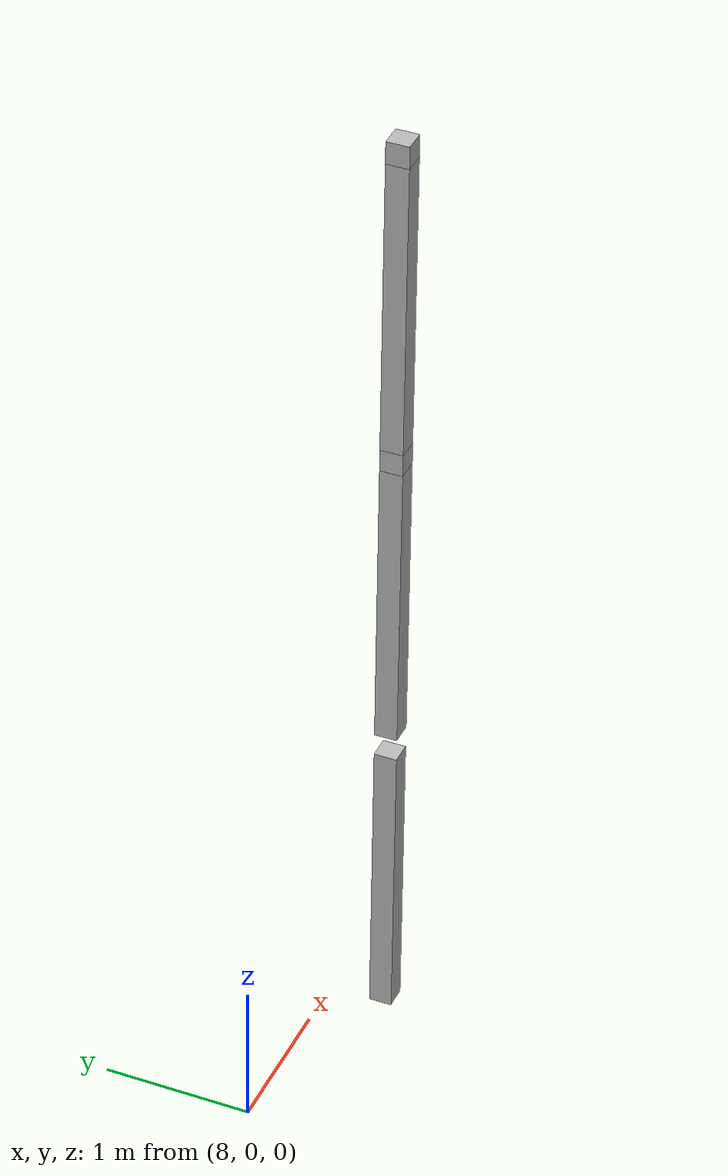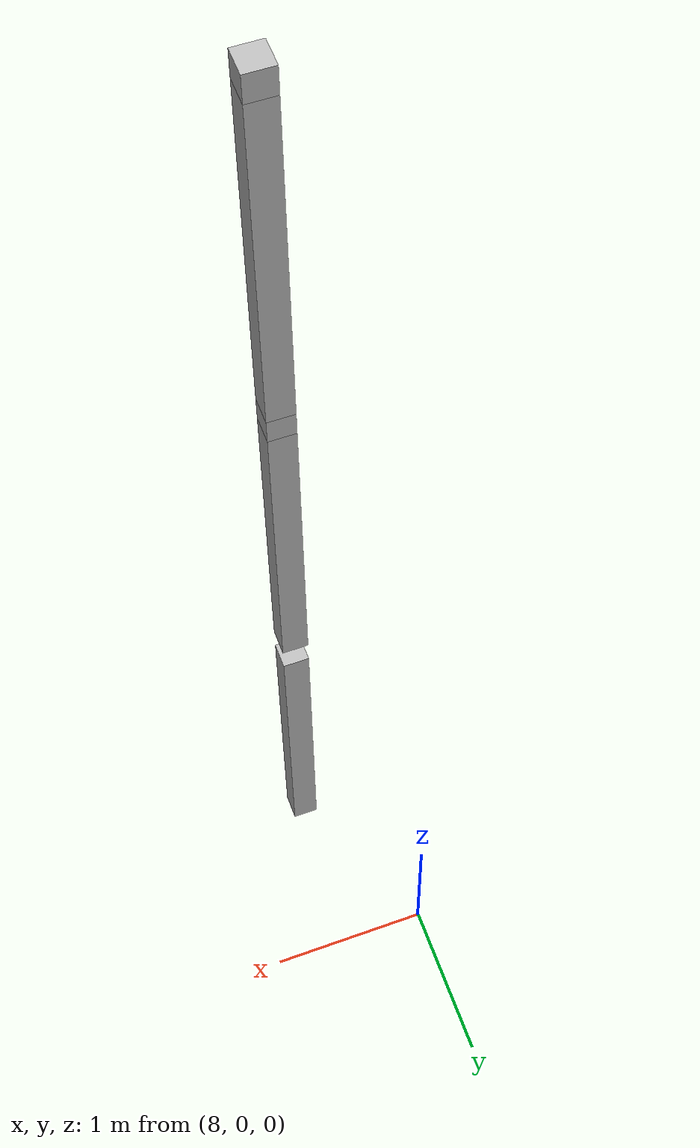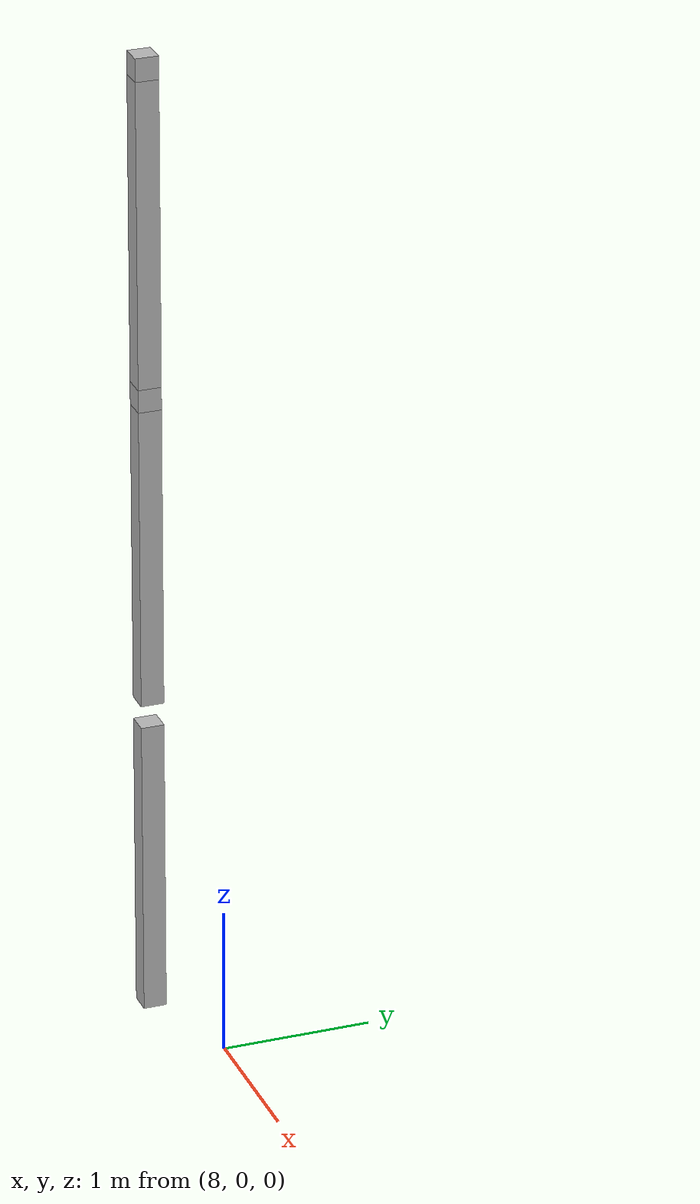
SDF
<sdf version="1.7">
 <world name="default">
  <model name="orthogonal_747_2.000.15_TS">
   <static>1</static>
   <link name="z_link_2_2_7">
    <inertial>
     <mass>1</mass>
     <inertia>
      <ixx>0.166667</ixx>
      <ixy>0</ixy>
      <ixz>0</ixz>
      <iyy>0.166667</iyy>
      <iyz>0</iyz>
      <izz>0.166667</izz>
     </inertia>
    </inertial>
    <pose>15.05 4.3 4.3 0 -0 0</pose>
    <visual name="visual_0">
     <laser_retro>2213</laser_retro>
     <geometry><box><size>0.15 1e-06 2</size></box></geometry>
     <material>
      <script><name>Gazebo/Grey</name><uri>file://media/materials/scripts/gazebo.material</uri></script>
      <shader type="pixel"><normal_map>__default__</normal_map></shader>
      <ambient>0.678 0.498 0.659 1</ambient>
      <diffuse>0.7 0.7 0.7 1</diffuse>
      <specular>0.01 0.01 0.01 1</specular>
      <emissive>0 0 0 1</emissive>
     </material>
     <pose>0 -0.075 0 0 -0 0</pose>
     <transparency>1</transparency>
    </visual>
    <visual name="visual_1">
     <laser_retro>2214</laser_retro>
     <geometry><box><size>0.15 1e-06 2</size></box></geometry>
     <material>
      <script><name>Gazebo/Grey</name><uri>file://media/materials/scripts/gazebo.material</uri></script>
      <shader type="pixel"><normal_map>__default__</normal_map></shader>
      <ambient>0.447 0.624 0.812 1</ambient>
      <diffuse>0.7 0.7 0.7 1</diffuse>
      <specular>0.01 0.01 0.01 1</specular>
      <emissive>0 0 0 1</emissive>
     </material>
     <pose>0 0.075 0 0 -0 0</pose>
     <transparency>1</transparency>
    </visual>
    <visual name="visual_2">
     <laser_retro>2215</laser_retro>
     <geometry><box><size>0.15 0.15 1e-06</size></box></geometry>
     <material>
      <script><name>Gazebo/Grey</name><uri>file://media/materials/scripts/gazebo.material</uri></script>
      <shader type="pixel"><normal_map>__default__</normal_map></shader>
      <ambient>0.988 0.686 0.243 1</ambient>
      <diffuse>0.7 0.7 0.7 1</diffuse>
      <specular>0.01 0.01 0.01 1</specular>
      <emissive>0 0 0 1</emissive>
     </material>
     <pose>0 0 -1 0 -0 0</pose>
     <transparency>1</transparency>
    </visual>
    <visual name="visual_3">
     <laser_retro>2216</laser_retro>
     <geometry><box><size>1e-06 0.15 2</size></box></geometry>
     <material>
      <script><name>Gazebo/Grey</name><uri>file://media/materials/scripts/gazebo.material</uri></script>
      <shader type="pixel"><normal_map>__default__</normal_map></shader>
      <ambient>0.988 0.914 0.31 1</ambient>
      <diffuse>0.7 0.7 0.7 1</diffuse>
      <specular>0.01 0.01 0.01 1</specular>
      <emissive>0 0 0 1</emissive>
     </material>
     <pose>0.075 0 0 0 -0 0</pose>
     <transparency>1</transparency>
    </visual>
    <visual name="visual_4">
     <laser_retro>2217</laser_retro>
     <geometry><box><size>0.15 0.15 1e-06</size></box></geometry>
     <material>
      <script><name>Gazebo/Grey</name><uri>file://media/materials/scripts/gazebo.material</uri></script>
      <shader type="pixel"><normal_map>__default__</normal_map></shader>
      <ambient>0.937 0.161 0.161 1</ambient>
      <diffuse>0.7 0.7 0.7 1</diffuse>
      <specular>0.01 0.01 0.01 1</specular>
      <emissive>0 0 0 1</emissive>
     </material>
     <pose>0 0 1 0 -0 0</pose>
     <transparency>1</transparency>
    </visual>
    <visual name="visual_5">
     <laser_retro>2218</laser_retro>
     <geometry><box><size>1e-06 0.15 2</size></box></geometry>
     <material>
      <script><name>Gazebo/Grey</name><uri>file://media/materials/scripts/gazebo.material</uri></script>
      <shader type="pixel"><normal_map>__default__</normal_map></shader>
      <ambient>0.541 0.886 0.204 1</ambient>
      <diffuse>0.7 0.7 0.7 1</diffuse>
      <specular>0.01 0.01 0.01 1</specular>
      <emissive>0 0 0 1</emissive>
     </material>
     <pose>-0.075 0 0 0 -0 0</pose>
     <transparency>1</transparency>
    </visual>
    <visual name="visual_texture">
     <geometry><box><size>0.149985 0.149985 1.9998</size></box></geometry>
     <material>
      <script>
       <uri>model://BASE_MODELS/simple_block_v2_textured/materials/scripts</uri>
       <uri>model://BASE_MODELS/simple_block_v2_textured/materials/textures</uri>
       <name>metal</name>
      </script>
     </material>
     <laser_retro>2219</laser_retro>
    </visual>
    <collision name="collision">
     <geometry><box><size>0.15 0.15 2</size></box></geometry>
     <surface>
      <friction>
       <ode><mu>1</mu><mu2>1</mu2><fdir1>0 0 0</fdir1><slip1>0</slip1><slip2>0</slip2></ode>
       <torsional>
        <coefficient>1</coefficient>
        <patch_radius>0</patch_radius>
        <surface_radius>0</surface_radius>
        <use_patch_radius>1</use_patch_radius>
        <ode><slip>0</slip></ode>
       </torsional>
      </friction>
      <bounce><restitution_coefficient>0</restitution_coefficient><threshold>1e+06</threshold></bounce>
      <contact>
       <collide_without_contact>0</collide_without_contact>
       <collide_without_contact_bitmask>1</collide_without_contact_bitmask>
       <collide_bitmask>1</collide_bitmask>
       <ode>
        <soft_cfm>0</soft_cfm>
        <soft_erp>0.2</soft_erp>
        <kp>1e+13</kp>
        <kd>1</kd>
        <max_vel>0.01</max_vel>
        <min_depth>0</min_depth>
       </ode>
       <bullet>
        <split_impulse>1</split_impulse>
        <split_impulse_penetration_threshold>-0.01</split_impulse_penetration_threshold>
        <soft_cfm>0</soft_cfm>
        <soft_erp>0.2</soft_erp>
        <kp>1e+13</kp>
        <kd>1</kd>
       </bullet>
      </contact>
     </surface>
    </collision>
   </link>
   <link name="u_link_3_2_7">
    <inertial>
     <mass>1</mass>
     <inertia>
      <ixx>0.166667</ixx>
      <ixy>0</ixy>
      <ixz>0</ixz>
      <iyy>0.166667</iyy>
      <iyz>0</iyz>
      <izz>0.166667</izz>
     </inertia>
    </inertial>
    <pose>15.05 4.3 7.525 0 -0 0</pose>
    <visual name="visual_0">
     <laser_retro>3109</laser_retro>
     <geometry><box><size>0.15 1e-06 0.15</size></box></geometry>
     <material>
      <script><name>Gazebo/Grey</name><uri>file://media/materials/scripts/gazebo.material</uri></script>
      <shader type="pixel"><normal_map>__default__</normal_map></shader>
      <ambient>0.678 0.498 0.659 1</ambient>
      <diffuse>0.7 0.7 0.7 1</diffuse>
      <specular>0.01 0.01 0.01 1</specular>
      <emissive>0 0 0 1</emissive>
     </material>
     <pose>0 -0.075 0 0 -0 0</pose>
     <transparency>1</transparency>
    </visual>
    <visual name="visual_1">
     <laser_retro>3110</laser_retro>
     <geometry><box><size>0.15 1e-06 0.15</size></box></geometry>
     <material>
      <script><name>Gazebo/Grey</name><uri>file://media/materials/scripts/gazebo.material</uri></script>
      <shader type="pixel"><normal_map>__default__</normal_map></shader>
      <ambient>0.447 0.624 0.812 1</ambient>
      <diffuse>0.7 0.7 0.7 1</diffuse>
      <specular>0.01 0.01 0.01 1</specular>
      <emissive>0 0 0 1</emissive>
     </material>
     <pose>0 0.075 0 0 -0 0</pose>
     <transparency>1</transparency>
    </visual>
    <visual name="visual_2">
     <laser_retro>3111</laser_retro>
     <geometry><box><size>0.15 0.15 1e-06</size></box></geometry>
     <material>
      <script><name>Gazebo/Grey</name><uri>file://media/materials/scripts/gazebo.material</uri></script>
      <shader type="pixel"><normal_map>__default__</normal_map></shader>
      <ambient>0.988 0.686 0.243 1</ambient>
      <diffuse>0.7 0.7 0.7 1</diffuse>
      <specular>0.01 0.01 0.01 1</specular>
      <emissive>0 0 0 1</emissive>
     </material>
     <pose>0 0 -0.075 0 -0 0</pose>
     <transparency>1</transparency>
    </visual>
    <visual name="visual_3">
     <laser_retro>3112</laser_retro>
     <geometry><box><size>1e-06 0.15 0.15</size></box></geometry>
     <material>
      <script><name>Gazebo/Grey</name><uri>file://media/materials/scripts/gazebo.material</uri></script>
      <shader type="pixel"><normal_map>__default__</normal_map></shader>
      <ambient>0.988 0.914 0.31 1</ambient>
      <diffuse>0.7 0.7 0.7 1</diffuse>
      <specular>0.01 0.01 0.01 1</specular>
      <emissive>0 0 0 1</emissive>
     </material>
     <pose>0.075 0 0 0 -0 0</pose>
     <transparency>1</transparency>
    </visual>
    <visual name="visual_4">
     <laser_retro>3113</laser_retro>
     <geometry><box><size>0.15 0.15 1e-06</size></box></geometry>
     <material>
      <script><name>Gazebo/Grey</name><uri>file://media/materials/scripts/gazebo.material</uri></script>
      <shader type="pixel"><normal_map>__default__</normal_map></shader>
      <ambient>0.937 0.161 0.161 1</ambient>
      <diffuse>0.7 0.7 0.7 1</diffuse>
      <specular>0.01 0.01 0.01 1</specular>
      <emissive>0 0 0 1</emissive>
     </material>
     <pose>0 0 0.075 0 -0 0</pose>
     <transparency>1</transparency>
    </visual>
    <visual name="visual_5">
     <laser_retro>3114</laser_retro>
     <geometry><box><size>1e-06 0.15 0.15</size></box></geometry>
     <material>
      <script><name>Gazebo/Grey</name><uri>file://media/materials/scripts/gazebo.material</uri></script>
      <shader type="pixel"><normal_map>__default__</normal_map></shader>
      <ambient>0.541 0.886 0.204 1</ambient>
      <diffuse>0.7 0.7 0.7 1</diffuse>
      <specular>0.01 0.01 0.01 1</specular>
      <emissive>0 0 0 1</emissive>
     </material>
     <pose>-0.075 0 0 0 -0 0</pose>
     <transparency>1</transparency>
    </visual>
    <visual name="visual_texture">
     <geometry><box><size>0.149985 0.149985 0.149985</size></box></geometry>
     <material>
      <script>
       <uri>model://BASE_MODELS/simple_block_v2_textured/materials/scripts</uri>
       <uri>model://BASE_MODELS/simple_block_v2_textured/materials/textures</uri>
       <name>metal</name>
      </script>
     </material>
     <laser_retro>3115</laser_retro>
    </visual>
    <collision name="collision">
     <geometry><box><size>0.15 0.15 0.15</size></box></geometry>
     <surface>
      <friction>
       <ode><mu>1</mu><mu2>1</mu2><fdir1>0 0 0</fdir1><slip1>0</slip1><slip2>0</slip2></ode>
       <torsional>
        <coefficient>1</coefficient>
        <patch_radius>0</patch_radius>
        <surface_radius>0</surface_radius>
        <use_patch_radius>1</use_patch_radius>
        <ode><slip>0</slip></ode>
       </torsional>
      </friction>
      <bounce><restitution_coefficient>0</restitution_coefficient><threshold>1e+06</threshold></bounce>
      <contact>
       <collide_without_contact>0</collide_without_contact>
       <collide_without_contact_bitmask>1</collide_without_contact_bitmask>
       <collide_bitmask>1</collide_bitmask>
       <ode>
        <soft_cfm>0</soft_cfm>
        <soft_erp>0.2</soft_erp>
        <kp>1e+13</kp>
        <kd>1</kd>
        <max_vel>0.01</max_vel>
        <min_depth>0</min_depth>
       </ode>
       <bullet>
        <split_impulse>1</split_impulse>
        <split_impulse_penetration_threshold>-0.01</split_impulse_penetration_threshold>
        <soft_cfm>0</soft_cfm>
        <soft_erp>0.2</soft_erp>
        <kp>1e+13</kp>
        <kd>1</kd>
       </bullet>
      </contact>
     </surface>
    </collision>
   </link>
   <link name="z_link_3_2_7">
    <inertial>
     <mass>1</mass>
     <inertia>
      <ixx>0.166667</ixx>
      <ixy>0</ixy>
      <ixz>0</ixz>
      <iyy>0.166667</iyy>
      <iyz>0</iyz>
      <izz>0.166667</izz>
     </inertia>
    </inertial>
    <pose>15.05 4.3 6.45 0 -0 0</pose>
    <visual name="visual_0">
     <laser_retro>3116</laser_retro>
     <geometry><box><size>0.15 1e-06 2</size></box></geometry>
     <material>
      <script><name>Gazebo/Grey</name><uri>file://media/materials/scripts/gazebo.material</uri></script>
      <shader type="pixel"><normal_map>__default__</normal_map></shader>
      <ambient>0.678 0.498 0.659 1</ambient>
      <diffuse>0.7 0.7 0.7 1</diffuse>
      <specular>0.01 0.01 0.01 1</specular>
      <emissive>0 0 0 1</emissive>
     </material>
     <pose>0 -0.075 0 0 -0 0</pose>
     <transparency>1</transparency>
    </visual>
    <visual name="visual_1">
     <laser_retro>3117</laser_retro>
     <geometry><box><size>0.15 1e-06 2</size></box></geometry>
     <material>
      <script><name>Gazebo/Grey</name><uri>file://media/materials/scripts/gazebo.material</uri></script>
      <shader type="pixel"><normal_map>__default__</normal_map></shader>
      <ambient>0.447 0.624 0.812 1</ambient>
      <diffuse>0.7 0.7 0.7 1</diffuse>
      <specular>0.01 0.01 0.01 1</specular>
      <emissive>0 0 0 1</emissive>
     </material>
     <pose>0 0.075 0 0 -0 0</pose>
     <transparency>1</transparency>
    </visual>
    <visual name="visual_2">
     <laser_retro>3118</laser_retro>
     <geometry><box><size>0.15 0.15 1e-06</size></box></geometry>
     <material>
      <script><name>Gazebo/Grey</name><uri>file://media/materials/scripts/gazebo.material</uri></script>
      <shader type="pixel"><normal_map>__default__</normal_map></shader>
      <ambient>0.988 0.686 0.243 1</ambient>
      <diffuse>0.7 0.7 0.7 1</diffuse>
      <specular>0.01 0.01 0.01 1</specular>
      <emissive>0 0 0 1</emissive>
     </material>
     <pose>0 0 -1 0 -0 0</pose>
     <transparency>1</transparency>
    </visual>
    <visual name="visual_3">
     <laser_retro>3119</laser_retro>
     <geometry><box><size>1e-06 0.15 2</size></box></geometry>
     <material>
      <script><name>Gazebo/Grey</name><uri>file://media/materials/scripts/gazebo.material</uri></script>
      <shader type="pixel"><normal_map>__default__</normal_map></shader>
      <ambient>0.988 0.914 0.31 1</ambient>
      <diffuse>0.7 0.7 0.7 1</diffuse>
      <specular>0.01 0.01 0.01 1</specular>
      <emissive>0 0 0 1</emissive>
     </material>
     <pose>0.075 0 0 0 -0 0</pose>
     <transparency>1</transparency>
    </visual>
    <visual name="visual_4">
     <laser_retro>3120</laser_retro>
     <geometry><box><size>0.15 0.15 1e-06</size></box></geometry>
     <material>
      <script><name>Gazebo/Grey</name><uri>file://media/materials/scripts/gazebo.material</uri></script>
      <shader type="pixel"><normal_map>__default__</normal_map></shader>
      <ambient>0.937 0.161 0.161 1</ambient>
      <diffuse>0.7 0.7 0.7 1</diffuse>
      <specular>0.01 0.01 0.01 1</specular>
      <emissive>0 0 0 1</emissive>
     </material>
     <pose>0 0 1 0 -0 0</pose>
     <transparency>1</transparency>
    </visual>
    <visual name="visual_5">
     <laser_retro>3121</laser_retro>
     <geometry><box><size>1e-06 0.15 2</size></box></geometry>
     <material>
      <script><name>Gazebo/Grey</name><uri>file://media/materials/scripts/gazebo.material</uri></script>
      <shader type="pixel"><normal_map>__default__</normal_map></shader>
      <ambient>0.541 0.886 0.204 1</ambient>
      <diffuse>0.7 0.7 0.7 1</diffuse>
      <specular>0.01 0.01 0.01 1</specular>
      <emissive>0 0 0 1</emissive>
     </material>
     <pose>-0.075 0 0 0 -0 0</pose>
     <transparency>1</transparency>
    </visual>
    <visual name="visual_texture">
     <geometry><box><size>0.149985 0.149985 1.9998</size></box></geometry>
     <material>
      <script>
       <uri>model://BASE_MODELS/simple_block_v2_textured/materials/scripts</uri>
       <uri>model://BASE_MODELS/simple_block_v2_textured/materials/textures</uri>
       <name>metal</name>
      </script>
     </material>
     <laser_retro>3122</laser_retro>
    </visual>
    <collision name="collision">
     <geometry><box><size>0.15 0.15 2</size></box></geometry>
     <surface>
      <friction>
       <ode><mu>1</mu><mu2>1</mu2><fdir1>0 0 0</fdir1><slip1>0</slip1><slip2>0</slip2></ode>
       <torsional>
        <coefficient>1</coefficient>
        <patch_radius>0</patch_radius>
        <surface_radius>0</surface_radius>
        <use_patch_radius>1</use_patch_radius>
        <ode><slip>0</slip></ode>
       </torsional>
      </friction>
      <bounce><restitution_coefficient>0</restitution_coefficient><threshold>1e+06</threshold></bounce>
      <contact>
       <collide_without_contact>0</collide_without_contact>
       <collide_without_contact_bitmask>1</collide_without_contact_bitmask>
       <collide_bitmask>1</collide_bitmask>
       <ode>
        <soft_cfm>0</soft_cfm>
        <soft_erp>0.2</soft_erp>
        <kp>1e+13</kp>
        <kd>1</kd>
        <max_vel>0.01</max_vel>
        <min_depth>0</min_depth>
       </ode>
       <bullet>
        <split_impulse>1</split_impulse>
        <split_impulse_penetration_threshold>-0.01</split_impulse_penetration_threshold>
        <soft_cfm>0</soft_cfm>
        <soft_erp>0.2</soft_erp>
        <kp>1e+13</kp>
        <kd>1</kd>
       </bullet>
      </contact>
     </surface>
    </collision>
   </link>
   <link name="u_link_4_2_7">
    <inertial>
     <mass>1</mass>
     <inertia>
      <ixx>0.166667</ixx>
      <ixy>0</ixy>
      <ixz>0</ixz>
      <iyy>0.166667</iyy>
      <iyz>0</iyz>
      <izz>0.166667</izz>
     </inertia>
    </inertial>
    <pose>15.05 4.3 9.675 0 -0 0</pose>
    <visual name="visual_0">
     <laser_retro>4012</laser_retro>
     <geometry><box><size>0.15 1e-06 0.15</size></box></geometry>
     <material>
      <script><name>Gazebo/Grey</name><uri>file://media/materials/scripts/gazebo.material</uri></script>
      <shader type="pixel"><normal_map>__default__</normal_map></shader>
      <ambient>0.678 0.498 0.659 1</ambient>
      <diffuse>0.7 0.7 0.7 1</diffuse>
      <specular>0.01 0.01 0.01 1</specular>
      <emissive>0 0 0 1</emissive>
     </material>
     <pose>0 -0.075 0 0 -0 0</pose>
     <transparency>1</transparency>
    </visual>
    <visual name="visual_1">
     <laser_retro>4013</laser_retro>
     <geometry><box><size>0.15 1e-06 0.15</size></box></geometry>
     <material>
      <script><name>Gazebo/Grey</name><uri>file://media/materials/scripts/gazebo.material</uri></script>
      <shader type="pixel"><normal_map>__default__</normal_map></shader>
      <ambient>0.447 0.624 0.812 1</ambient>
      <diffuse>0.7 0.7 0.7 1</diffuse>
      <specular>0.01 0.01 0.01 1</specular>
      <emissive>0 0 0 1</emissive>
     </material>
     <pose>0 0.075 0 0 -0 0</pose>
     <transparency>1</transparency>
    </visual>
    <visual name="visual_2">
     <laser_retro>4014</laser_retro>
     <geometry><box><size>0.15 0.15 1e-06</size></box></geometry>
     <material>
      <script><name>Gazebo/Grey</name><uri>file://media/materials/scripts/gazebo.material</uri></script>
      <shader type="pixel"><normal_map>__default__</normal_map></shader>
      <ambient>0.988 0.686 0.243 1</ambient>
      <diffuse>0.7 0.7 0.7 1</diffuse>
      <specular>0.01 0.01 0.01 1</specular>
      <emissive>0 0 0 1</emissive>
     </material>
     <pose>0 0 -0.075 0 -0 0</pose>
     <transparency>1</transparency>
    </visual>
    <visual name="visual_3">
     <laser_retro>4015</laser_retro>
     <geometry><box><size>1e-06 0.15 0.15</size></box></geometry>
     <material>
      <script><name>Gazebo/Grey</name><uri>file://media/materials/scripts/gazebo.material</uri></script>
      <shader type="pixel"><normal_map>__default__</normal_map></shader>
      <ambient>0.988 0.914 0.31 1</ambient>
      <diffuse>0.7 0.7 0.7 1</diffuse>
      <specular>0.01 0.01 0.01 1</specular>
      <emissive>0 0 0 1</emissive>
     </material>
     <pose>0.075 0 0 0 -0 0</pose>
     <transparency>1</transparency>
    </visual>
    <visual name="visual_4">
     <laser_retro>4016</laser_retro>
     <geometry><box><size>0.15 0.15 1e-06</size></box></geometry>
     <material>
      <script><name>Gazebo/Grey</name><uri>file://media/materials/scripts/gazebo.material</uri></script>
      <shader type="pixel"><normal_map>__default__</normal_map></shader>
      <ambient>0.937 0.161 0.161 1</ambient>
      <diffuse>0.7 0.7 0.7 1</diffuse>
      <specular>0.01 0.01 0.01 1</specular>
      <emissive>0 0 0 1</emissive>
     </material>
     <pose>0 0 0.075 0 -0 0</pose>
     <transparency>1</transparency>
    </visual>
    <visual name="visual_5">
     <laser_retro>4017</laser_retro>
     <geometry><box><size>1e-06 0.15 0.15</size></box></geometry>
     <material>
      <script><name>Gazebo/Grey</name><uri>file://media/materials/scripts/gazebo.material</uri></script>
      <shader type="pixel"><normal_map>__default__</normal_map></shader>
      <ambient>0.541 0.886 0.204 1</ambient>
      <diffuse>0.7 0.7 0.7 1</diffuse>
      <specular>0.01 0.01 0.01 1</specular>
      <emissive>0 0 0 1</emissive>
     </material>
     <pose>-0.075 0 0 0 -0 0</pose>
     <transparency>1</transparency>
    </visual>
    <visual name="visual_texture">
     <geometry><box><size>0.149985 0.149985 0.149985</size></box></geometry>
     <material>
      <script>
       <uri>model://BASE_MODELS/simple_block_v2_textured/materials/scripts</uri>
       <uri>model://BASE_MODELS/simple_block_v2_textured/materials/textures</uri>
       <name>metal</name>
      </script>
     </material>
     <laser_retro>4018</laser_retro>
    </visual>
    <collision name="collision">
     <geometry><box><size>0.15 0.15 0.15</size></box></geometry>
     <surface>
      <friction>
       <ode><mu>1</mu><mu2>1</mu2><fdir1>0 0 0</fdir1><slip1>0</slip1><slip2>0</slip2></ode>
       <torsional>
        <coefficient>1</coefficient>
        <patch_radius>0</patch_radius>
        <surface_radius>0</surface_radius>
        <use_patch_radius>1</use_patch_radius>
        <ode><slip>0</slip></ode>
       </torsional>
      </friction>
      <bounce><restitution_coefficient>0</restitution_coefficient><threshold>1e+06</threshold></bounce>
      <contact>
       <collide_without_contact>0</collide_without_contact>
       <collide_without_contact_bitmask>1</collide_without_contact_bitmask>
       <collide_bitmask>1</collide_bitmask>
       <ode>
        <soft_cfm>0</soft_cfm>
        <soft_erp>0.2</soft_erp>
        <kp>1e+13</kp>
        <kd>1</kd>
        <max_vel>0.01</max_vel>
        <min_depth>0</min_depth>
       </ode>
       <bullet>
        <split_impulse>1</split_impulse>
        <split_impulse_penetration_threshold>-0.01</split_impulse_penetration_threshold>
        <soft_cfm>0</soft_cfm>
        <soft_erp>0.2</soft_erp>
        <kp>1e+13</kp>
        <kd>1</kd>
       </bullet>
      </contact>
     </surface>
    </collision>
   </link>
   <link name="z_link_4_2_7">
    <inertial>
     <mass>1</mass>
     <inertia>
      <ixx>0.166667</ixx>
      <ixy>0</ixy>
      <ixz>0</ixz>
      <iyy>0.166667</iyy>
      <iyz>0</iyz>
      <izz>0.166667</izz>
     </inertia>
    </inertial>
    <pose>15.05 4.3 8.6 0 -0 0</pose>
    <visual name="visual_0">
     <laser_retro>4019</laser_retro>
     <geometry><box><size>0.15 1e-06 2</size></box></geometry>
     <material>
      <script><name>Gazebo/Grey</name><uri>file://media/materials/scripts/gazebo.material</uri></script>
      <shader type="pixel"><normal_map>__default__</normal_map></shader>
      <ambient>0.678 0.498 0.659 1</ambient>
      <diffuse>0.7 0.7 0.7 1</diffuse>
      <specular>0.01 0.01 0.01 1</specular>
      <emissive>0 0 0 1</emissive>
     </material>
     <pose>0 -0.075 0 0 -0 0</pose>
     <transparency>1</transparency>
    </visual>
    <visual name="visual_1">
     <laser_retro>4020</laser_retro>
     <geometry><box><size>0.15 1e-06 2</size></box></geometry>
     <material>
      <script><name>Gazebo/Grey</name><uri>file://media/materials/scripts/gazebo.material</uri></script>
      <shader type="pixel"><normal_map>__default__</normal_map></shader>
      <ambient>0.447 0.624 0.812 1</ambient>
      <diffuse>0.7 0.7 0.7 1</diffuse>
      <specular>0.01 0.01 0.01 1</specular>
      <emissive>0 0 0 1</emissive>
     </material>
     <pose>0 0.075 0 0 -0 0</pose>
     <transparency>1</transparency>
    </visual>
    <visual name="visual_2">
     <laser_retro>4021</laser_retro>
     <geometry><box><size>0.15 0.15 1e-06</size></box></geometry>
     <material>
      <script><name>Gazebo/Grey</name><uri>file://media/materials/scripts/gazebo.material</uri></script>
      <shader type="pixel"><normal_map>__default__</normal_map></shader>
      <ambient>0.988 0.686 0.243 1</ambient>
      <diffuse>0.7 0.7 0.7 1</diffuse>
      <specular>0.01 0.01 0.01 1</specular>
      <emissive>0 0 0 1</emissive>
     </material>
     <pose>0 0 -1 0 -0 0</pose>
     <transparency>1</transparency>
    </visual>
    <visual name="visual_3">
     <laser_retro>4022</laser_retro>
     <geometry><box><size>1e-06 0.15 2</size></box></geometry>
     <material>
      <script><name>Gazebo/Grey</name><uri>file://media/materials/scripts/gazebo.material</uri></script>
      <shader type="pixel"><normal_map>__default__</normal_map></shader>
      <ambient>0.988 0.914 0.31 1</ambient>
      <diffuse>0.7 0.7 0.7 1</diffuse>
      <specular>0.01 0.01 0.01 1</specular>
      <emissive>0 0 0 1</emissive>
     </material>
     <pose>0.075 0 0 0 -0 0</pose>
     <transparency>1</transparency>
    </visual>
    <visual name="visual_4">
     <laser_retro>4023</laser_retro>
     <geometry><box><size>0.15 0.15 1e-06</size></box></geometry>
     <material>
      <script><name>Gazebo/Grey</name><uri>file://media/materials/scripts/gazebo.material</uri></script>
      <shader type="pixel"><normal_map>__default__</normal_map></shader>
      <ambient>0.937 0.161 0.161 1</ambient>
      <diffuse>0.7 0.7 0.7 1</diffuse>
      <specular>0.01 0.01 0.01 1</specular>
      <emissive>0 0 0 1</emissive>
     </material>
     <pose>0 0 1 0 -0 0</pose>
     <transparency>1</transparency>
    </visual>
    <visual name="visual_5">
     <laser_retro>4024</laser_retro>
     <geometry><box><size>1e-06 0.15 2</size></box></geometry>
     <material>
      <script><name>Gazebo/Grey</name><uri>file://media/materials/scripts/gazebo.material</uri></script>
      <shader type="pixel"><normal_map>__default__</normal_map></shader>
      <ambient>0.541 0.886 0.204 1</ambient>
      <diffuse>0.7 0.7 0.7 1</diffuse>
      <specular>0.01 0.01 0.01 1</specular>
      <emissive>0 0 0 1</emissive>
     </material>
     <pose>-0.075 0 0 0 -0 0</pose>
     <transparency>1</transparency>
    </visual>
    <visual name="visual_texture">
     <geometry><box><size>0.149985 0.149985 1.9998</size></box></geometry>
     <material>
      <script>
       <uri>model://BASE_MODELS/simple_block_v2_textured/materials/scripts</uri>
       <uri>model://BASE_MODELS/simple_block_v2_textured/materials/textures</uri>
       <name>metal</name>
      </script>
     </material>
     <laser_retro>4025</laser_retro>
    </visual>
    <collision name="collision">
     <geometry><box><size>0.15 0.15 2</size></box></geometry>
     <surface>
      <friction>
       <ode><mu>1</mu><mu2>1</mu2><fdir1>0 0 0</fdir1><slip1>0</slip1><slip2>0</slip2></ode>
       <torsional>
        <coefficient>1</coefficient>
        <patch_radius>0</patch_radius>
        <surface_radius>0</surface_radius>
        <use_patch_radius>1</use_patch_radius>
        <ode><slip>0</slip></ode>
       </torsional>
      </friction>
      <bounce><restitution_coefficient>0</restitution_coefficient><threshold>1e+06</threshold></bounce>
      <contact>
       <collide_without_contact>0</collide_without_contact>
       <collide_without_contact_bitmask>1</collide_without_contact_bitmask>
       <collide_bitmask>1</collide_bitmask>
       <ode>
        <soft_cfm>0</soft_cfm>
        <soft_erp>0.2</soft_erp>
        <kp>1e+13</kp>
        <kd>1</kd>
        <max_vel>0.01</max_vel>
        <min_depth>0</min_depth>
       </ode>
       <bullet>
        <split_impulse>1</split_impulse>
        <split_impulse_penetration_threshold>-0.01</split_impulse_penetration_threshold>
        <soft_cfm>0</soft_cfm>
        <soft_erp>0.2</soft_erp>
        <kp>1e+13</kp>
        <kd>1</kd>
       </bullet>
      </contact>
     </surface>
    </collision>
   </link>
   <pose>-6.47624 -5 -2.5 0 -0 0</pose>
  </model>
 </world>
</sdf>
